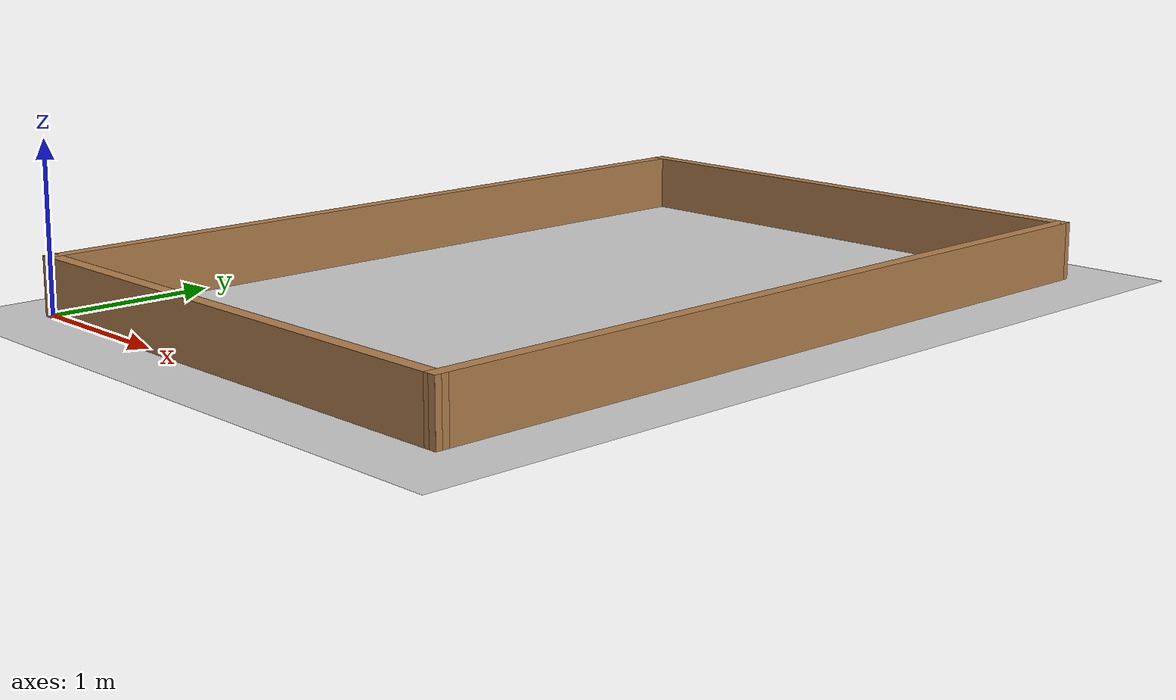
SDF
<sdf version='1.4'>
  <world name='default'>
    <!-- A global light source -->
    <include>
      <uri>model://sun</uri>
    </include>

    <!-- A ground plane -->
    <include>
      <uri>model://ground_plane</uri>
    </include>

    <physics type="ode">
      <real_time_update_rate>1000.0</real_time_update_rate>
      <max_step_size>0.001</max_step_size>
      <real_time_factor>1</real_time_factor>
      <ode>
        <solver>
          <type>quick</type>
          <iters>150</iters>
          <precon_iters>0</precon_iters>
          <sor>1.400000</sor>
          <use_dynamic_moi_rescaling>1</use_dynamic_moi_rescaling>
        </solver>
        <constraints>
          <cfm>0.00001</cfm>
          <erp>0.2</erp>
          <contact_max_correcting_vel>2000.000000</contact_max_correcting_vel>
          <contact_surface_layer>0.01000</contact_surface_layer>
        </constraints>
      </ode>
    </physics>

    <!-- A turtlebot symbol -->
    <include>
      <uri>model://turtlebot3_empty</uri>
    </include>

    <scene>
      <ambient>0.4 0.4 0.4 1</ambient>
      <background>0.7 0.7 0.7 1</background>
      <shadows>true</shadows>
    </scene>

    <gui fullscreen='0'>
      <camera name='user_camera'>
        <pose>0.0 0.0 17.0 0 1.5708 0</pose>
        <view_controller>orbit</view_controller>
      </camera>
    </gui>
  </world>
</sdf>

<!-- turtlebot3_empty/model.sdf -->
<sdf version='1.6'>
  <model name='turtlebot3_empty'>
    <pose frame=''>1.688 2.4505 0 0 -0 0</pose>
    <link name='Wall_0'>
      <collision name='Wall_0_Collision'>
        <geometry>
          <box>
            <size>4.98 0.08 0.35</size>
          </box>
        </geometry>
        <pose frame=''>0 0 0.175 0 -0 0</pose>
      </collision>
      <visual name='Wall_0_Visual'>
        <pose frame=''>0 0 0.175 0 -0 0</pose>
        <geometry>
          <box>
            <size>4.98 0.08 0.35</size>
          </box>
        </geometry>
        <material>
          <script>
            <uri>file://media/materials/scripts/gazebo.material</uri>
            <name>Gazebo/Wood</name>
          </script>
          <ambient>0.996078 0.47451 0.0196078 1</ambient>
        </material>
      </visual>
      <pose frame=''>-1.675 -0.0005 0 0 -0 1.5761</pose>
    </link>
    <link name='Wall_3'>
      <collision name='Wall_3_Collision'>
        <geometry>
          <box>
            <size>3.43 0.08 0.35</size>
          </box>
        </geometry>
        <pose frame=''>0 0 0.175 0 -0 0</pose>
      </collision>
      <visual name='Wall_3_Visual'>
        <pose frame=''>0 0 0.175 0 -0 0</pose>
        <geometry>
          <box>
            <size>3.43 0.08 0.35</size>
          </box>
        </geometry>
        <material>
          <script>
            <uri>file://media/materials/scripts/gazebo.material</uri>
            <name>Gazebo/Wood</name>
          </script>
          <ambient>0.996078 0.47451 0.0196078 1</ambient>
        </material>
      </visual>
      <pose frame=''>0.013 -2.45 0 0 -0 0.000299</pose>
    </link>
    <link name='Wall_4'>
      <collision name='Wall_4_Collision'>
        <geometry>
          <box>
            <size>4.98 0.08 0.35</size>
          </box>
        </geometry>
        <pose frame=''>0 0 0.175 0 -0 0</pose>
      </collision>
      <visual name='Wall_4_Visual'>
        <pose frame=''>0 0 0.175 0 -0 0</pose>
        <geometry>
          <box>
            <size>4.98 0.08 0.35</size>
          </box>
        </geometry>
        <material>
          <script>
            <uri>file://media/materials/scripts/gazebo.material</uri>
            <name>Gazebo/Wood</name>
          </script>
          <ambient>0.996078 0.47451 0.0196078 1</ambient>
        </material>
      </visual>
      <pose frame=''>1.675 0.0005 0 0 -0 1.5761</pose>
    </link>
    <link name='Wall_6'>
      <collision name='Wall_6_Collision'>
        <geometry>
          <box>
            <size>3.43 0.08 0.35</size>
          </box>
        </geometry>
        <pose frame=''>0 0 0.175 0 -0 0</pose>
      </collision>
      <visual name='Wall_6_Visual'>
        <pose frame=''>0 0 0.175 0 -0 0</pose>
        <geometry>
          <box>
            <size>3.43 0.08 0.35</size>
          </box>
        </geometry>
        <material>
          <script>
            <uri>file://media/materials/scripts/gazebo.material</uri>
            <name>Gazebo/Wood</name>
          </script>
          <ambient>0.996078 0.47451 0.0196078 1</ambient>
        </material>
      </visual>
      <pose frame=''>-0.013 2.45 0 0 -0 0.000299</pose>
    </link>
    <static>1</static>
  </model>
</sdf>
